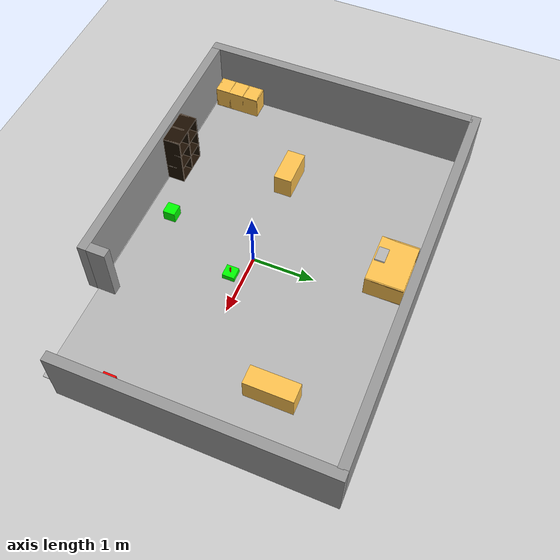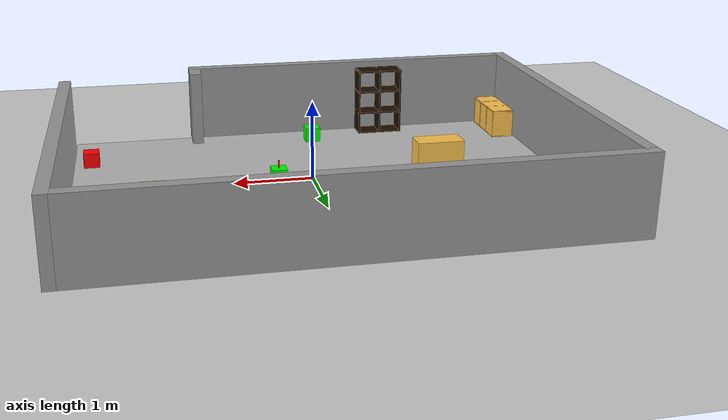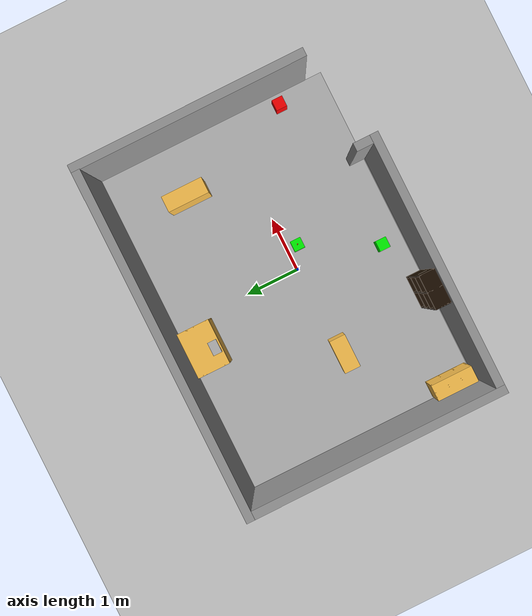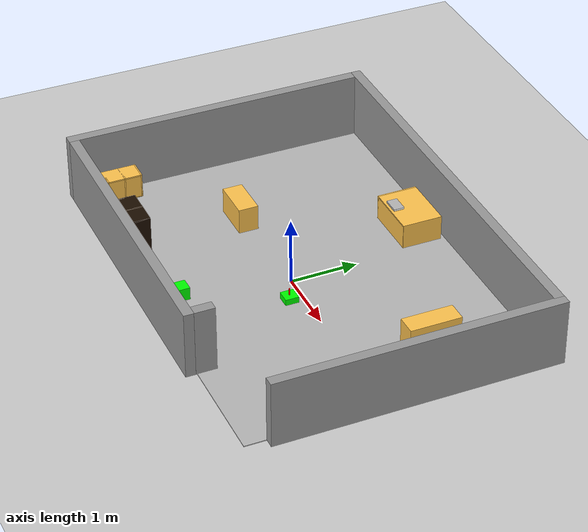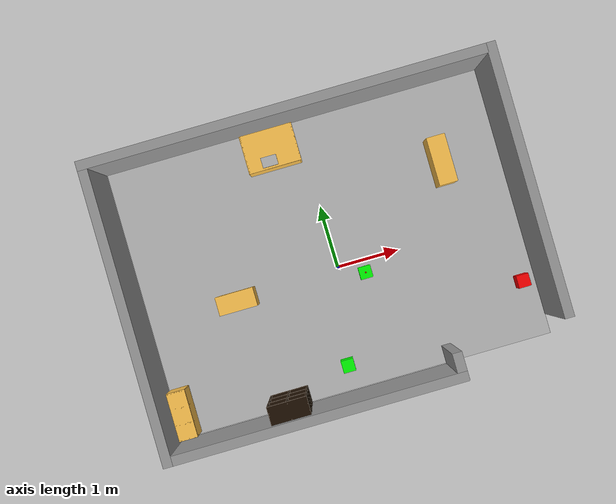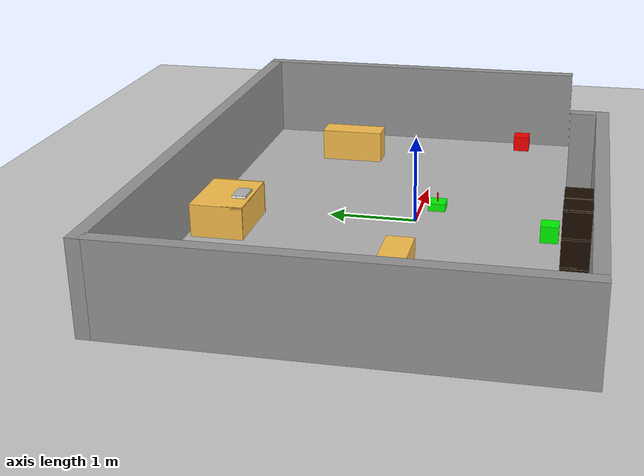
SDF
<sdf version="1.7">
 <world name="default">
  <plugin name="link_attacher_plugin" filename="libgazebo_ros_link_attacher.so"/>
  <light name="sun" type="directional">
   <pose>0 0 10 0 -0 0</pose>
   <diffuse>0.8 0.8 0.8 1</diffuse>
   <specular>0.2 0.2 0.2 1</specular>
   <attenuation>
    <range>1000</range>
    <constant>0.9</constant>
    <linear>0.01</linear>
    <quadratic>0.001</quadratic>
   </attenuation>
   <direction>-0.5 0.1 -0.9</direction>
   <spot><inner_angle>0</inner_angle><outer_angle>0</outer_angle><falloff>0</falloff></spot>
  </light>
  <model name="ground_plane">
   <static>1</static>
   <link name="link">
    <collision name="collision">
     <geometry><plane><normal>0 0 1</normal><size>100 100</size></plane></geometry>
     <surface>
      <contact><collide_bitmask>65535</collide_bitmask></contact>
      <friction><ode><mu>100</mu><mu2>50</mu2></ode></friction>
     </surface>
    </collision>
    <visual name="visual">
     <cast_shadows>0</cast_shadows>
     <geometry><plane><normal>0 0 1</normal><size>100 100</size></plane></geometry>
     <material>
      <script><uri>file://media/materials/scripts/gazebo.material</uri><name>Gazebo/Grey</name></script>
     </material>
    </visual>
   </link>
  </model>
  <gravity>0 0 -9.8</gravity>
  <magnetic_field>6e-06 2.3e-05 -4.2e-05</magnetic_field>
  <atmosphere type="adiabatic"/>
  <physics type="ode">
   <max_step_size>0.001</max_step_size>
   <real_time_factor>1</real_time_factor>
   <real_time_update_rate>1000</real_time_update_rate>
  </physics>
  <scene><ambient>0.4 0.4 0.4 1</ambient><background>0.7 0.7 0.7 1</background><shadows>1</shadows></scene>
  <spherical_coordinates>
   <surface_model>EARTH_WGS84</surface_model>
   <latitude_deg>0</latitude_deg>
   <longitude_deg>0</longitude_deg>
   <elevation>0</elevation>
   <heading_deg>0</heading_deg>
  </spherical_coordinates>
  <model name="Workshop">
   <link name="Wall_10">
    <collision name="Wall_10_Collision">
     <geometry><box><size>6.26 0.15 1</size></box></geometry>
     <pose>0 0 0.5 0 -0 0</pose>
    </collision>
    <visual name="Wall_10_Visual">
     <pose>0 0 0.5 0 -0 0</pose>
     <geometry><box><size>6.26 0.15 1</size></box></geometry>
     <material>
      <script><uri>file://media/materials/scripts/gazebo.material</uri><name>Gazebo/Grey</name></script>
      <ambient>0 0 0 1</ambient>
     </material>
    </visual>
    <pose>-0.0745 2.24856 0 0 -0 0</pose>
   </link>
   <link name="Wall_11">
    <collision name="Wall_11_Collision">
     <geometry><box><size>4.19994 0.15 1</size></box></geometry>
     <pose>0 0 0.5 0 -0 0</pose>
    </collision>
    <visual name="Wall_11_Visual">
     <pose>0 0 0.5 0 -0 0</pose>
     <geometry><box><size>4.19994 0.15 1</size></box></geometry>
     <material>
      <script><uri>file://media/materials/scripts/gazebo.material</uri><name>Gazebo/Grey</name></script>
      <ambient>0 0 0 1</ambient>
     </material>
    </visual>
    <pose>3.12 0.2235 0 0 0 -1.5708</pose>
   </link>
   <link name="Wall_13">
    <collision name="Wall_13_Collision">
     <geometry><box><size>4.55706 0.15 1</size></box></geometry>
     <pose>0 0 0.5 0 -0 0</pose>
    </collision>
    <visual name="Wall_13_Visual">
     <pose>0 0 0.5 0 -0 0</pose>
     <geometry><box><size>4.55706 0.15 1</size></box></geometry>
     <material>
      <script><uri>file://media/materials/scripts/gazebo.material</uri><name>Gazebo/Grey</name></script>
      <ambient>0 0 0 1</ambient>
     </material>
    </visual>
    <pose>-3.1295 -0.075 0 0 0 -1.5708</pose>
   </link>
   <link name="Wall_15">
    <collision name="Wall_15_Collision">
     <geometry><box><size>4.521 0.15 1</size></box></geometry>
     <pose>0 0 0.5 0 -0 0</pose>
    </collision>
    <visual name="Wall_15_Visual">
     <pose>0 0 0.5 0 -0 0</pose>
     <geometry><box><size>4.521 0.15 1</size></box></geometry>
     <material>
      <script><uri>file://media/materials/scripts/gazebo.material</uri><name>Gazebo/Grey</name></script>
      <ambient>0 0 0 1</ambient>
     </material>
    </visual>
    <pose>-0.794 -2.2785 0 0 -0 0</pose>
   </link>
   <link name="Wall_17">
    <collision name="Wall_17_Collision">
     <geometry><box><size>0.302 0.15 1</size></box></geometry>
     <pose>0 0 0.5 0 -0 0</pose>
    </collision>
    <visual name="Wall_17_Visual">
     <pose>0 0 0.5 0 -0 0</pose>
     <geometry><box><size>0.302 0.15 1</size></box></geometry>
     <material>
      <script><uri>file://media/materials/scripts/gazebo.material</uri><name>Gazebo/Grey</name></script>
      <ambient>0 0 0 1</ambient>
     </material>
    </visual>
    <pose>1.392 -2.05744 0 0 -0 1.5708</pose>
   </link>
   <link name="Wall_19">
    <collision name="Wall_19_Collision">
     <geometry><box><size>6.099 4.38 -0.013</size></box></geometry>
     <surface><friction><ode><mu>1</mu><mu2>1</mu2></ode></friction></surface>
    </collision>
    <visual name="Wall_19_Visual">
     <geometry><box><size>6.099 4.38 -0.013</size></box></geometry>
     <material>
      <script>
       <uri>model://Workshop/materials/scripts</uri>
       <uri>model://Workshop/materials/textures</uri>
       <name>rubber</name>
      </script>
     </material>
    </visual>
    <velocity_decay><linear>0</linear><angular>0</angular></velocity_decay>
   </link>
   <static>1</static>
   <pose>-0.07701 0.243526 0 0 -0 0</pose>
  </model>
  <model name="Box_24x15M">
   <link name="Wall">
    <pose>0 0 0.1985 0 -0 0</pose>
    <inertial>
     <mass>5</mass>
     <inertia><ixx>0.1022</ixx><iyy>0.2197</iyy><izz>0.1905</izz><ixy>0</ixy><ixz>0</ixz><iyz>0</iyz></inertia>
    </inertial>
    <collision name="Wall_Collision"><geometry><box><size>0.608 0.296 0.397</size></box></geometry></collision>
    <visual name="Wall_Visual">
     <geometry><box><size>0.608 0.296 0.397</size></box></geometry>
     <material>
      <script><uri>file://media/materials/scripts/gazebo.material</uri><name>Gazebo/Grey</name></script>
      <ambient>1 0.764706 0.305882 1</ambient>
     </material>
    </visual>
   </link>
   <static>1</static>
   <pose>-1.6592 -0.071355 0 0 -0 0</pose>
  </model>
  <model name="Box_15x30">
   <link name="Wall">
    <pose>0 0 0.1985 0 -0 0</pose>
    <inertial>
     <mass>5</mass>
     <inertia><ixx>0.3089</ixx><iyy>0.1022</iyy><izz>0.2797</izz><ixy>0</ixy><ixz>0</ixz><iyz>0</iyz></inertia>
    </inertial>
    <collision name="Wall_Collision"><geometry><box><size>0.296 0.764 0.397</size></box></geometry></collision>
    <visual name="Wall_Visual">
     <geometry><box><size>0.296 0.764 0.397</size></box></geometry>
     <material>
      <script><uri>file://media/materials/scripts/gazebo.material</uri><name>Gazebo/Grey</name></script>
      <ambient>1 0.764706 0.305882 1</ambient>
     </material>
    </visual>
   </link>
   <static>1</static>
   <pose>2.00481 1.15628 0 0 -0 0</pose>
  </model>
  <model name="6_Cube_StorageE">
   <link name="Wall_0">
    <pose>0 0 0.01 0 -0 0</pose>
    <inertial>
     <mass>1.6201</mass>
     <inertia><ixx>0.0119</ixx><iyy>0.0631</iyy><izz>0.0513</izz><ixy>0</ixy><ixz>0</ixz><iyz>0</iyz></inertia>
    </inertial>
    <collision name="Wall_0_Collision"><geometry><box><size>0.616 0.296 0.02</size></box></geometry></collision>
    <visual name="Wall_0_Visual">
     <geometry><box><size>0.616 0.296 0.02</size></box></geometry>
     <material>
      <script><uri>file://media/materials/scripts/gazebo.material</uri><name>Gazebo/Grey</name></script>
      <ambient>0.105882 0.0509804 0 1</ambient>
     </material>
    </visual>
   </link>
   <joint name="0_2" type="fixed">
    <pose>-0.308 0 0 0 -0 0</pose>
    <parent>Wall_2</parent>
    <child>Wall_0</child>
    <axis><xyz>1 0 0</xyz><limit><lower>-1e+16</lower><upper>1e+16</upper></limit></axis>
   </joint>
   <joint name="0_12" type="fixed">
    <parent>Wall_12</parent>
    <child>Wall_0</child>
    <axis><xyz>0 0 1</xyz><limit><lower>-1e+16</lower><upper>1e+16</upper></limit></axis>
   </joint>
   <joint name="0_4" type="fixed">
    <pose>0.308 0 0 0 -0 0</pose>
    <parent>Wall_4</parent>
    <child>Wall_0</child>
    <axis><xyz>1 0 0</xyz><limit><lower>-1e+16</lower><upper>1e+16</upper></limit></axis>
   </joint>
   <link name="Wall_10">
    <pose>0 0 0.61 0 -0 0</pose>
    <inertial>
     <mass>1.6201</mass>
     <inertia><ixx>0.0119</ixx><iyy>0.0631</iyy><izz>0.0513</izz><ixy>0</ixy><ixz>0</ixz><iyz>0</iyz></inertia>
    </inertial>
    <collision name="Wall_10_Collision"><geometry><box><size>0.616 0.296 0.02</size></box></geometry></collision>
    <visual name="Wall_10_Visual">
     <geometry><box><size>0.616 0.296 0.02</size></box></geometry>
     <material>
      <script><uri>file://media/materials/scripts/gazebo.material</uri><name>Gazebo/Grey</name></script>
      <ambient>0.105882 0.0509804 0 1</ambient>
     </material>
    </visual>
   </link>
   <joint name="10_2" type="fixed">
    <pose>-0.308 0 0 0 -0 0</pose>
    <parent>Wall_2</parent>
    <child>Wall_10</child>
    <axis><xyz>1 0 0</xyz><limit><lower>-1e+16</lower><upper>1e+16</upper></limit></axis>
   </joint>
   <joint name="10_12" type="fixed">
    <parent>Wall_12</parent>
    <child>Wall_10</child>
    <axis><xyz>0 0 1</xyz><limit><lower>-1e+16</lower><upper>1e+16</upper></limit></axis>
   </joint>
   <joint name="10_4" type="fixed">
    <pose>0.308 0 0 0 -0 0</pose>
    <parent>Wall_4</parent>
    <child>Wall_10</child>
    <axis><xyz>1 0 0</xyz><limit><lower>-1e+16</lower><upper>1e+16</upper></limit></axis>
   </joint>
   <link name="Wall_12">
    <pose>0 0 0.4575 0 -0 0</pose>
    <inertial>
     <mass>2.4065</mass>
     <inertia><ixx>0.0177</ixx><iyy>0.1855</iyy><izz>0.168</izz><ixy>0</ixy><ixz>0</ixz><iyz>0</iyz></inertia>
    </inertial>
    <collision name="Wall_12_Collision"><geometry><box><size>0.02 0.296 0.915</size></box></geometry></collision>
    <visual name="Wall_12_Visual">
     <geometry><box><size>0.02 0.296 0.915</size></box></geometry>
     <material>
      <script><uri>file://media/materials/scripts/gazebo.material</uri><name>Gazebo/Grey</name></script>
      <ambient>0.105882 0.0509804 0 1</ambient>
     </material>
    </visual>
   </link>
   <link name="Wall_2">
    <pose>-0.298 0 0.4575 0 -0 0</pose>
    <inertial>
     <mass>2.4065</mass>
     <inertia><ixx>0.0177</ixx><iyy>0.1855</iyy><izz>0.168</izz><ixy>0</ixy><ixz>0</ixz><iyz>0</iyz></inertia>
    </inertial>
    <collision name="Wall_2_Collision"><geometry><box><size>0.02 0.296 0.915</size></box></geometry></collision>
    <visual name="Wall_2_Visual">
     <geometry><box><size>0.02 0.296 0.915</size></box></geometry>
     <material>
      <script><uri>file://media/materials/scripts/gazebo.material</uri><name>Gazebo/Grey</name></script>
      <ambient>0.105882 0.0509804 0 1</ambient>
     </material>
    </visual>
   </link>
   <link name="Wall_4">
    <pose>0.298 0 0.4575 0 -0 0</pose>
    <inertial>
     <mass>2.4065</mass>
     <inertia><ixx>0.0177</ixx><iyy>0.1855</iyy><izz>0.168</izz><ixy>0</ixy><ixz>0</ixz><iyz>0</iyz></inertia>
    </inertial>
    <collision name="Wall_4_Collision"><geometry><box><size>0.02 0.296 0.915</size></box></geometry></collision>
    <visual name="Wall_4_Visual">
     <geometry><box><size>0.02 0.296 0.915</size></box></geometry>
     <material>
      <script><uri>file://media/materials/scripts/gazebo.material</uri><name>Gazebo/Grey</name></script>
      <ambient>0.105882 0.0509804 0 1</ambient>
     </material>
    </visual>
   </link>
   <link name="Wall_6">
    <pose>0 0 0.905 0 -0 0</pose>
    <inertial>
     <mass>1.6201</mass>
     <inertia><ixx>0.0119</ixx><iyy>0.0631</iyy><izz>0.0513</izz><ixy>0</ixy><ixz>0</ixz><iyz>0</iyz></inertia>
    </inertial>
    <collision name="Wall_6_Collision"><geometry><box><size>0.616 0.296 0.02</size></box></geometry></collision>
    <visual name="Wall_6_Visual">
     <geometry><box><size>0.616 0.296 0.02</size></box></geometry>
     <material>
      <script><uri>file://media/materials/scripts/gazebo.material</uri><name>Gazebo/Grey</name></script>
      <ambient>0.105882 0.0509804 0 1</ambient>
     </material>
    </visual>
   </link>
   <joint name="6_2" type="fixed">
    <pose>-0.308 0 0 0 -0 0</pose>
    <parent>Wall_2</parent>
    <child>Wall_6</child>
    <axis><xyz>2 0 0</xyz><limit><lower>-1e+16</lower><upper>1e+16</upper></limit></axis>
   </joint>
   <joint name="6_12" type="fixed">
    <parent>Wall_12</parent>
    <child>Wall_6</child>
    <axis><xyz>0 0 1</xyz><limit><lower>-1e+16</lower><upper>1e+16</upper></limit></axis>
   </joint>
   <joint name="6_4" type="fixed">
    <pose>0.308 0 0 0 -0 0</pose>
    <parent>Wall_4</parent>
    <child>Wall_6</child>
    <axis><xyz>1 0 0</xyz><limit><lower>-1e+16</lower><upper>1e+16</upper></limit></axis>
   </joint>
   <link name="Wall_8">
    <pose>0 0 0.305 0 -0 0</pose>
    <inertial>
     <mass>1.6201</mass>
     <inertia><ixx>0.0119</ixx><iyy>0.0631</iyy><izz>0.0513</izz><ixy>0</ixy><ixz>0</ixz><iyz>0</iyz></inertia>
    </inertial>
    <collision name="Wall_8_Collision"><geometry><box><size>0.616 0.296 0.02</size></box></geometry></collision>
    <visual name="Wall_8_Visual">
     <geometry><box><size>0.616 0.296 0.02</size></box></geometry>
     <material>
      <script><uri>file://media/materials/scripts/gazebo.material</uri><name>Gazebo/Grey</name></script>
      <ambient>0.105882 0.0509804 0 1</ambient>
     </material>
    </visual>
   </link>
   <joint name="8_2" type="fixed">
    <pose>-0.308 0 0 0 -0 0</pose>
    <parent>Wall_2</parent>
    <child>Wall_8</child>
    <axis><xyz>1 0 0</xyz><limit><lower>-1e+16</lower><upper>1e+16</upper></limit></axis>
   </joint>
   <joint name="8_12" type="fixed">
    <parent>Wall_12</parent>
    <child>Wall_8</child>
    <axis><xyz>0 0 1</xyz><limit><lower>-1e+16</lower><upper>1e+16</upper></limit></axis>
   </joint>
   <joint name="8_4" type="fixed">
    <pose>0.308 0 0 0 -0 0</pose>
    <parent>Wall_4</parent>
    <child>Wall_8</child>
    <axis><xyz>1 0 0</xyz><limit><lower>-1e+16</lower><upper>1e+16</upper></limit></axis>
   </joint>
   <static>1</static>
   <pose>-1.28921 -1.82398 0 0 -0 0</pose>
  </model>
  <model name="Wall_Cabinet_15x30">
   <pose>-2.95525 -1.53071 0 0 -0 0</pose>
   <link name="Wall_0">
    <pose>0 0.374 0.192 0 -0 0</pose>
    <inertial>
     <mass>0.9882</mass>
     <inertia><ixx>0.0072</ixx><iyy>0.0194</iyy><izz>0.0122</izz><ixy>0</ixy><ixz>0</ixz><iyz>0</iyz></inertia>
    </inertial>
    <collision name="Wall_0_Collision"><geometry><box><size>0.296 0.02 0.384</size></box></geometry></collision>
    <visual name="Wall_0_Visual">
     <geometry><box><size>0.296 0.02 0.384</size></box></geometry>
     <material>
      <script><uri>file://media/materials/scripts/gazebo.material</uri><name>Gazebo/Grey</name></script>
      <ambient>1 0.764706 0.305882 1</ambient>
     </material>
    </visual>
   </link>
   <joint name="0_2" type="fixed">
    <pose>0 0 0.192 0 -0 0</pose>
    <parent>Wall_2</parent>
    <child>Wall_0</child>
    <axis><xyz>0 0 1</xyz><limit><lower>-1e+16</lower><upper>1e+16</upper></limit></axis>
   </joint>
   <joint name="0_4" type="fixed">
    <pose>0 0 -0.192 0 -0 0</pose>
    <parent>Wall_4</parent>
    <child>Wall_0</child>
    <axis><xyz>0 0 1</xyz><limit><lower>-1e+16</lower><upper>1e+16</upper></limit></axis>
   </joint>
   <joint name="0_15" type="fixed">
    <pose>0.148 0 0 0 -0 0</pose>
    <parent>Wall_15</parent>
    <child>Wall_0</child>
    <axis><xyz>1 0 0</xyz><limit><lower>-1e+16</lower><upper>1e+16</upper></limit></axis>
   </joint>
   <link name="Wall_11">
    <pose>0 -0.132768 0.192 0 -0 0</pose>
    <inertial>
     <mass>0.9882</mass>
     <inertia><ixx>0.0072</ixx><iyy>0.0194</iyy><izz>0.0122</izz><ixy>0</ixy><ixz>0</ixz><iyz>0</iyz></inertia>
    </inertial>
    <collision name="Wall_11_Collision"><geometry><box><size>0.296 0.02 0.384</size></box></geometry></collision>
    <visual name="Wall_11_Visual">
     <geometry><box><size>0.296 0.02 0.384</size></box></geometry>
     <material>
      <script><uri>file://media/materials/scripts/gazebo.material</uri><name>Gazebo/Grey</name></script>
      <ambient>1 0.764706 0.305882 1</ambient>
     </material>
    </visual>
   </link>
   <joint name="11_2" type="fixed">
    <pose>0 0 0.192 0 -0 0</pose>
    <parent>Wall_2</parent>
    <child>Wall_11</child>
    <axis><xyz>0 0 1</xyz><limit><lower>-1e+16</lower><upper>1e+16</upper></limit></axis>
   </joint>
   <joint name="11_4" type="fixed">
    <pose>0 0 -0.192 0 -0 0</pose>
    <parent>Wall_4</parent>
    <child>Wall_11</child>
    <axis><xyz>0 0 1</xyz><limit><lower>-1e+16</lower><upper>1e+16</upper></limit></axis>
   </joint>
   <joint name="11_15" type="fixed">
    <pose>0.148 0 0 0 -0 0</pose>
    <parent>Wall_15</parent>
    <child>Wall_11</child>
    <axis><xyz>1 0 0</xyz><limit><lower>-1e+16</lower><upper>1e+16</upper></limit></axis>
   </joint>
   <link name="Wall_15">
    <pose>0.138 0 0.19 0 -0 0</pose>
    <inertial>
     <mass>2.5241</mass>
     <inertia><ixx>0.0305</ixx><iyy>0.1229</iyy><izz>0.1532</izz><ixy>0</ixy><ixz>0</ixz><iyz>0</iyz></inertia>
    </inertial>
    <collision name="Wall_15_Collision"><geometry><box><size>0.02 0.764 0.38</size></box></geometry></collision>
    <visual name="Wall_15_Visual">
     <geometry><box><size>0.02 0.764 0.38</size></box></geometry>
     <material>
      <script><uri>file://media/materials/scripts/gazebo.material</uri><name>Gazebo/Grey</name></script>
      <ambient>1 0.764706 0.305882 1</ambient>
     </material>
    </visual>
   </link>
   <joint name="15_2" type="fixed">
    <pose>0 0 0.19 0 -0 0</pose>
    <parent>Wall_2</parent>
    <child>Wall_15</child>
    <axis><xyz>0 0 1</xyz><limit><lower>-1e+16</lower><upper>1e+16</upper></limit></axis>
   </joint>
   <joint name="15_4" type="fixed">
    <pose>0 0 -0.19 0 -0 0</pose>
    <parent>Wall_4</parent>
    <child>Wall_15</child>
    <axis><xyz>0 0 1</xyz><limit><lower>-1e+16</lower><upper>1e+16</upper></limit></axis>
   </joint>
   <link name="Wall_2">
    <pose>0 0 0.374 0 -0 0</pose>
    <inertial>
     <mass>1.9765</mass>
     <inertia><ixx>0.0145</ixx><iyy>0.1116</iyy><izz>0.0972</izz><ixy>0</ixy><ixz>0</ixz><iyz>0</iyz></inertia>
    </inertial>
    <collision name="Wall_2_Collision"><geometry><box><size>0.296 0.768 0.02</size></box></geometry></collision>
    <visual name="Wall_2_Visual">
     <geometry><box><size>0.296 0.768 0.02</size></box></geometry>
     <material>
      <script><uri>file://media/materials/scripts/gazebo.material</uri><name>Gazebo/Grey</name></script>
      <ambient>1 0.764706 0.305882 1</ambient>
     </material>
    </visual>
   </link>
   <link name="Wall_4">
    <pose>0 0 0.01 0 -0 0</pose>
    <inertial>
     <mass>1.9765</mass>
     <inertia><ixx>0.0145</ixx><iyy>0.1116</iyy><izz>0.0972</izz><ixy>0</ixy><ixz>0</ixz><iyz>0</iyz></inertia>
    </inertial>
    <collision name="Wall_4_Collision"><geometry><box><size>0.296 0.768 0.02</size></box></geometry></collision>
    <visual name="Wall_4_Visual">
     <geometry><box><size>0.296 0.768 0.02</size></box></geometry>
     <material>
      <script><uri>file://media/materials/scripts/gazebo.material</uri><name>Gazebo/Grey</name></script>
      <ambient>1 0.764706 0.305882 1</ambient>
     </material>
    </visual>
    <pose>-0.181124 0 0 0 0 -1.5708</pose>
   </link>
   <link name="Wall_6">
    <pose>0 -0.374 0.192 0 -0 0</pose>
    <inertial>
     <mass>0.9882</mass>
     <inertia><ixx>0.0072</ixx><iyy>0.0194</iyy><izz>0.0122</izz><ixy>0</ixy><ixz>0</ixz><iyz>0</iyz></inertia>
    </inertial>
    <collision name="Wall_6_Collision"><geometry><box><size>0.296 0.02 0.384</size></box></geometry></collision>
    <visual name="Wall_6_Visual">
     <geometry><box><size>0.296 0.02 0.384</size></box></geometry>
     <material>
      <script><uri>file://media/materials/scripts/gazebo.material</uri><name>Gazebo/Grey</name></script>
      <ambient>1 0.764706 0.305882 1</ambient>
     </material>
    </visual>
   </link>
   <joint name="6_2" type="fixed">
    <pose>0 0 0.192 0 -0 0</pose>
    <parent>Wall_2</parent>
    <child>Wall_6</child>
    <axis><xyz>0 0 1</xyz><limit><lower>-1e+16</lower><upper>1e+16</upper></limit></axis>
   </joint>
   <joint name="6_4" type="fixed">
    <pose>0 0 -0.192 0 -0 0</pose>
    <parent>Wall_4</parent>
    <child>Wall_6</child>
    <axis><xyz>0 0 1</xyz><limit><lower>-1e+16</lower><upper>1e+16</upper></limit></axis>
   </joint>
   <joint name="6_15" type="fixed">
    <pose>0.148 0 0 0 -0 0</pose>
    <parent>Wall_15</parent>
    <child>Wall_6</child>
    <axis><xyz>1 0 0</xyz><limit><lower>-1e+16</lower><upper>1e+16</upper></limit></axis>
   </joint>
   <link name="Wall_8">
    <pose>0 0.120833 0.192 0 -0 0</pose>
    <inertial>
     <mass>0.9882</mass>
     <inertia><ixx>0.0072</ixx><iyy>0.0194</iyy><izz>0.0122</izz><ixy>0</ixy><ixz>0</ixz><iyz>0</iyz></inertia>
    </inertial>
    <collision name="Wall_8_Collision"><geometry><box><size>0.296 0.02 0.384</size></box></geometry></collision>
    <visual name="Wall_8_Visual">
     <geometry><box><size>0.296 0.02 0.384</size></box></geometry>
     <material>
      <script><uri>file://media/materials/scripts/gazebo.material</uri><name>Gazebo/Grey</name></script>
      <ambient>1 0.764706 0.305882 1</ambient>
     </material>
    </visual>
   </link>
   <joint name="8_2" type="fixed">
    <pose>0 0 0.192 0 -0 0</pose>
    <parent>Wall_2</parent>
    <child>Wall_8</child>
    <axis><xyz>0 0 1</xyz><limit><lower>-1e+16</lower><upper>1e+16</upper></limit></axis>
   </joint>
   <joint name="8_4" type="fixed">
    <pose>0 0 -0.192 0 -0 0</pose>
    <parent>Wall_4</parent>
    <child>Wall_8</child>
    <axis><xyz>0 0 1</xyz><limit><lower>-1e+16</lower><upper>1e+16</upper></limit></axis>
   </joint>
   <joint name="8_15" type="fixed">
    <pose>0.148 0 0 0 -0 0</pose>
    <parent>Wall_15</parent>
    <child>Wall_8</child>
    <axis><xyz>1 0 0</xyz><limit><lower>-1e+16</lower><upper>1e+16</upper></limit></axis>
   </joint>
   <static>1</static>
  </model>
  <model name="Fridge_Cabinet_33x15">
   <link name="Wall_17">
    <pose>0 0 0.01 0 -0 0</pose>
    <inertial>
     <mass>4.8627</mass>
     <inertia><ixx>0.146</ixx><iyy>0.4318</iyy><izz>0.2861</izz><ixy>0</ixy><ixz>0</ixz><iyz>0</iyz></inertia>
    </inertial>
    <collision name="Wall_17_Collision"><geometry><box><size>0.84 0.6 0.02</size></box></geometry></collision>
    <visual name="Wall_17_Visual">
     <geometry><box><size>0.84 0.6 0.02</size></box></geometry>
     <material>
      <script><uri>file://media/materials/scripts/gazebo.material</uri><name>Gazebo/Grey</name></script>
      <ambient>1 0.764706 0.305882 1</ambient>
     </material>
    </visual>
   </link>
   <joint name="17_21" type="fixed">
    <pose>0.42 0 0 0 -0 0</pose>
    <parent>Wall_21</parent>
    <child>Wall_17</child>
    <axis><xyz>1 0 0</xyz><limit><lower>-1e+16</lower><upper>1e+16</upper></limit></axis>
   </joint>
   <joint name="17_19" type="fixed">
    <pose>-0.42 0 0 0 -0 0</pose>
    <parent>Wall_19</parent>
    <child>Wall_17</child>
    <axis><xyz>1 0 0</xyz><limit><lower>-1e+16</lower><upper>1e+16</upper></limit></axis>
   </joint>
   <joint name="17_25" type="fixed">
    <pose>0 -0.3 0 0 -0 0</pose>
    <parent>Wall_25</parent>
    <child>Wall_17</child>
    <axis><xyz>0 1 0</xyz><limit><lower>-1e+16</lower><upper>1e+16</upper></limit></axis>
   </joint>
   <link name="Wall_19">
    <pose>-0.41 0 0.192 0 -0 0</pose>
    <inertial>
     <mass>2.223</mass>
     <inertia><ixx>0.0668</ixx><iyy>0.094</iyy><izz>0.0274</izz><ixy>0</ixy><ixz>0</ixz><iyz>0</iyz></inertia>
    </inertial>
    <collision name="Wall_19_Collision"><geometry><box><size>0.02 0.6 0.384</size></box></geometry></collision>
    <visual name="Wall_19_Visual">
     <geometry><box><size>0.02 0.6 0.384</size></box></geometry>
     <material>
      <script><uri>file://media/materials/scripts/gazebo.material</uri><name>Gazebo/Grey</name></script>
      <ambient>1 0.764706 0.305882 1</ambient>
     </material>
    </visual>
   </link>
   <link name="Wall_21">
    <pose>0.41 0 0.192 0 -0 0</pose>
    <inertial>
     <mass>2.223</mass>
     <inertia><ixx>0.0668</ixx><iyy>0.094</iyy><izz>0.0274</izz><ixy>0</ixy><ixz>0</ixz><iyz>0</iyz></inertia>
    </inertial>
    <collision name="Wall_21_Collision"><geometry><box><size>0.02 0.6 0.384</size></box></geometry></collision>
    <visual name="Wall_21_Visual">
     <geometry><box><size>0.02 0.6 0.384</size></box></geometry>
     <material>
      <script><uri>file://media/materials/scripts/gazebo.material</uri><name>Gazebo/Grey</name></script>
      <ambient>1 0.764706 0.305882 1</ambient>
     </material>
    </visual>
   </link>
   <link name="Wall_23">
    <pose>0 0 0.374 0 -0 0</pose>
    <inertial>
     <mass>4.8627</mass>
     <inertia><ixx>0.146</ixx><iyy>0.4318</iyy><izz>0.2861</izz><ixy>0</ixy><ixz>0</ixz><iyz>0</iyz></inertia>
    </inertial>
    <collision name="Wall_23_Collision"><geometry><box><size>0.84 0.6 0.02</size></box></geometry></collision>
    <visual name="Wall_23_Visual">
     <geometry><box><size>0.84 0.6 0.02</size></box></geometry>
     <material>
      <script><uri>file://media/materials/scripts/gazebo.material</uri><name>Gazebo/Grey</name></script>
      <ambient>1 0.764706 0.305882 1</ambient>
     </material>
    </visual>
   </link>
   <joint name="23_21" type="fixed">
    <pose>0.42 0 0 0 -0 0</pose>
    <parent>Wall_21</parent>
    <child>Wall_23</child>
    <axis><xyz>0 0 1</xyz><limit><lower>-1e+16</lower><upper>1e+16</upper></limit></axis>
   </joint>
   <joint name="23_19" type="fixed">
    <pose>-0.42 0 0 0 -0 0</pose>
    <parent>Wall_19</parent>
    <child>Wall_23</child>
    <axis><xyz>0 0 1</xyz><limit><lower>-1e+16</lower><upper>1e+16</upper></limit></axis>
   </joint>
   <joint name="23_25" type="fixed">
    <pose>0 -0.3 0 0 -0 0</pose>
    <parent>Wall_25</parent>
    <child>Wall_23</child>
    <axis><xyz>0 0 1</xyz><limit><lower>-1e+16</lower><upper>1e+16</upper></limit></axis>
   </joint>
   <link name="Wall_25">
    <pose>0 -0.29 0.19 0 -0 0</pose>
    <inertial>
     <mass>3.0651</mass>
     <inertia><ixx>0.037</ixx><iyy>0.1786</iyy><izz>0.2154</izz><ixy>0</ixy><ixz>0</ixz><iyz>0</iyz></inertia>
    </inertial>
    <collision name="Wall_25_Collision"><geometry><box><size>0.836 0.02 0.38</size></box></geometry></collision>
    <visual name="Wall_25_Visual">
     <geometry><box><size>0.836 0.02 0.38</size></box></geometry>
     <material>
      <script><uri>file://media/materials/scripts/gazebo.material</uri><name>Gazebo/Grey</name></script>
      <ambient>1 0.764706 0.305882 1</ambient>
     </material>
    </visual>
   </link>
   <joint name="25_21" type="fixed">
    <pose>0.42 0 0 0 -0 0</pose>
    <parent>Wall_21</parent>
    <child>Wall_25</child>
    <axis><xyz>0 1 0</xyz><limit><lower>-1e+16</lower><upper>1e+16</upper></limit></axis>
   </joint>
   <joint name="25_19" type="fixed">
    <pose>-0.42 0 0 0 -0 0</pose>
    <parent>Wall_19</parent>
    <child>Wall_25</child>
    <axis><xyz>0 1 0</xyz><limit><lower>-1e+16</lower><upper>1e+16</upper></limit></axis>
   </joint>
   <static>1</static>
   <pose>-0.498193 2.0597 0 0 -0 0</pose>
  </model>
  <model name="object">
   <link name="link_0">
    <inertial>
     <mass>0.005</mass>
     <inertia><ixx>0.145833</ixx><ixy>0</ixy><ixz>0</ixz><iyy>0.145833</iyy><iyz>0</iyz><izz>0.125</izz></inertia>
    </inertial>
    <visual name="visual">
     <geometry><cylinder><radius>0.01</radius><length>0.1</length></cylinder></geometry>
     <material>
      <lighting>1</lighting>
      <script><uri>file://media/materials/scripts/gazebo.material</uri><name>Gazebo/Grey</name></script>
      <shader type="pixel"><normal_map>__default__</normal_map></shader>
      <ambient>1 0 0 1</ambient>
      <diffuse>1 0 0 1</diffuse>
      <specular>0 0 0 1</specular>
      <emissive>0 0 0 1</emissive>
     </material>
    </visual>
    <collision name="collision">
     <geometry><cylinder><radius>0.01</radius><length>0.1</length></cylinder></geometry>
     <surface>
      <friction>
       <ode><mu>2.0</mu><mu2>2.0</mu2><fdir1>0 0 0</fdir1><slip1>0</slip1><slip2>0</slip2></ode>
       <torsional>
        <coefficient>2</coefficient>
        <patch_radius>0</patch_radius>
        <surface_radius>0</surface_radius>
        <use_patch_radius>1</use_patch_radius>
        <ode><slip>0</slip></ode>
       </torsional>
      </friction>
      <bounce><restitution_coefficient>0</restitution_coefficient><threshold>1e+06</threshold></bounce>
      <contact>
       <collide_without_contact>0</collide_without_contact>
       <collide_without_contact_bitmask>1</collide_without_contact_bitmask>
       <collide_bitmask>1</collide_bitmask>
       <ode>
        <soft_cfm>0</soft_cfm>
        <soft_erp>0.2</soft_erp>
        <kp>1e+13</kp>
        <kd>1</kd>
        <max_vel>0.01</max_vel>
        <min_depth>0</min_depth>
       </ode>
       <bullet>
        <split_impulse>1</split_impulse>
        <split_impulse_penetration_threshold>-0.01</split_impulse_penetration_threshold>
        <soft_cfm>0</soft_cfm>
        <soft_erp>0.2</soft_erp>
        <kp>1e+13</kp>
        <kd>1</kd>
       </bullet>
      </contact>
     </surface>
    </collision>
   </link>
   <static>0</static>
   <pose>0.4 -0.2 0.15 0.000499 -6.9e-05 0.000874</pose>
  </model>
  <model name="cube_r">
   <link name="link_2">
    <pose>0 0 0.1 0 -0 0</pose>
    <inertial>
     <mass>1</mass>
     <inertia>
      <ixx>0.166667</ixx>
      <ixy>0</ixy>
      <ixz>0</ixz>
      <iyy>0.166667</iyy>
      <iyz>0</iyz>
      <izz>0.166667</izz>
     </inertia>
    </inertial>
    <visual name="visual">
     <geometry><box><size>0.2 0.2 0.2</size></box></geometry>
     <material>
      <lighting>1</lighting>
      <script><uri>file://media/materials/scripts/gazebo.material</uri><name>Gazebo/Grey</name></script>
      <ambient>1 0 0 1</ambient>
      <diffuse>1 0 0 1</diffuse>
      <specular>0 0 0 1</specular>
      <emissive>0 0 0 1</emissive>
      <shader type="vertex"><normal_map>__default__</normal_map></shader>
     </material>
    </visual>
    <collision name="collision">
     <geometry><box><size>0.2 0.2 0.2</size></box></geometry>
     <surface>
      <friction>
       <ode><mu>1</mu><mu2>1</mu2><fdir1>0 0 0</fdir1><slip1>0</slip1><slip2>0</slip2></ode>
       <torsional>
        <coefficient>1</coefficient>
        <patch_radius>0</patch_radius>
        <surface_radius>0</surface_radius>
        <use_patch_radius>1</use_patch_radius>
        <ode><slip>0</slip></ode>
       </torsional>
      </friction>
      <bounce><restitution_coefficient>0</restitution_coefficient><threshold>1e+06</threshold></bounce>
      <contact>
       <collide_without_contact>0</collide_without_contact>
       <collide_without_contact_bitmask>1</collide_without_contact_bitmask>
       <collide_bitmask>1</collide_bitmask>
       <ode>
        <soft_cfm>0</soft_cfm>
        <soft_erp>0.2</soft_erp>
        <kp>1e+13</kp>
        <kd>1</kd>
        <max_vel>0.01</max_vel>
        <min_depth>0</min_depth>
       </ode>
       <bullet>
        <split_impulse>1</split_impulse>
        <split_impulse_penetration_threshold>-0.01</split_impulse_penetration_threshold>
        <soft_cfm>0</soft_cfm>
        <soft_erp>0.2</soft_erp>
        <kp>1e+13</kp>
        <kd>1</kd>
       </bullet>
      </contact>
     </surface>
    </collision>
   </link>
   <static>1</static>
   <pose>2.74509 -1.0136 0 0 -0 0</pose>
  </model>
  <model name="cube_g">
   <link name="link_2">
    <pose>0 0 0.1 0 -0 0</pose>
    <inertial>
     <mass>1</mass>
     <inertia>
      <ixx>0.166667</ixx>
      <ixy>0</ixy>
      <ixz>0</ixz>
      <iyy>0.166667</iyy>
      <iyz>0</iyz>
      <izz>0.166667</izz>
     </inertia>
    </inertial>
    <visual name="visual">
     <geometry><box><size>0.2 0.2 0.2</size></box></geometry>
     <material>
      <lighting>1</lighting>
      <script><uri>file://media/materials/scripts/gazebo.material</uri><name>Gazebo/Grey</name></script>
      <ambient>0 1 0 1</ambient>
      <diffuse>0 1 0 1</diffuse>
      <specular>0 0 0 1</specular>
      <emissive>0 0 0 1</emissive>
      <shader type="vertex"><normal_map>__default__</normal_map></shader>
     </material>
    </visual>
    <collision name="collision">
     <geometry><box><size>0.2 0.2 0.2</size></box></geometry>
     <surface>
      <friction>
       <ode><mu>1</mu><mu2>1</mu2><fdir1>0 0 0</fdir1><slip1>0</slip1><slip2>0</slip2></ode>
       <torsional>
        <coefficient>1</coefficient>
        <patch_radius>0</patch_radius>
        <surface_radius>0</surface_radius>
        <use_patch_radius>1</use_patch_radius>
        <ode><slip>0</slip></ode>
       </torsional>
      </friction>
      <bounce><restitution_coefficient>0</restitution_coefficient><threshold>1e+06</threshold></bounce>
      <contact>
       <collide_without_contact>0</collide_without_contact>
       <collide_without_contact_bitmask>1</collide_without_contact_bitmask>
       <collide_bitmask>1</collide_bitmask>
       <ode>
        <soft_cfm>0</soft_cfm>
        <soft_erp>0.2</soft_erp>
        <kp>1e+13</kp>
        <kd>1</kd>
        <max_vel>0.01</max_vel>
        <min_depth>0</min_depth>
       </ode>
       <bullet>
        <split_impulse>1</split_impulse>
        <split_impulse_penetration_threshold>-0.01</split_impulse_penetration_threshold>
        <soft_cfm>0</soft_cfm>
        <soft_erp>0.2</soft_erp>
        <kp>1e+13</kp>
        <kd>1</kd>
       </bullet>
      </contact>
     </surface>
    </collision>
   </link>
   <static>1</static>
   <pose>-0.269393 -1.53356 0 0 -0 0</pose>
  </model>
  <model name="book_16">
   <link name="cover">
    <pose>0 -0.000108 0.015405 0 -0 0</pose>
    <visual name="visual">
     <geometry><box><size>0.245 0.16 0.03</size></box></geometry>
     <material>
      <script>
       <uri>model://book_16/materials/scripts</uri>
       <uri>model://book_16/materials/textures</uri>
       <name>book_16</name>
      </script>
     </material>
    </visual>
    <collision name="collision"><geometry><box><size>0.245 0.16 0.03</size></box></geometry></collision>
   </link>
   <link name="page">
    <pose>0 0.000608 0.015405 0 -0 0</pose>
    <visual name="visual">
     <geometry><box><size>0.24502 0.15862 0.028</size></box></geometry>
     <material>
      <lighting>1</lighting>
      <ambient>1 1 1 1</ambient>
      <diffuse>1 1 1 1</diffuse>
      <specular>0.01 0.01 0.01 1</specular>
      <emissive>0 0 0 1</emissive>
      <shader type="vertex"><normal_map>__default__</normal_map></shader>
     </material>
    </visual>
    <collision name="collision"><geometry><box><size>0.245 0.16 0.03</size></box></geometry></collision>
   </link>
   <static>1</static>
   <pose>-0.562166 1.86631 0.4 0 -0 0</pose>
  </model>
  <model name="table1_0">
   <static>1</static>
   <link name="link">
    <collision name="collision"><geometry><box><size>0.2 0.2 0.2</size></box></geometry></collision>
    <visual name="visual">
     <geometry><box><size>0.2 0.2 0.2</size></box></geometry>
     <material><ambient>0 1 0 1</ambient><diffuse>0 1 0 1</diffuse></material>
    </visual>
   </link>
   <pose>0.4 -0.2 0 0 -0 0</pose>
  </model>
 </world>
</sdf>
